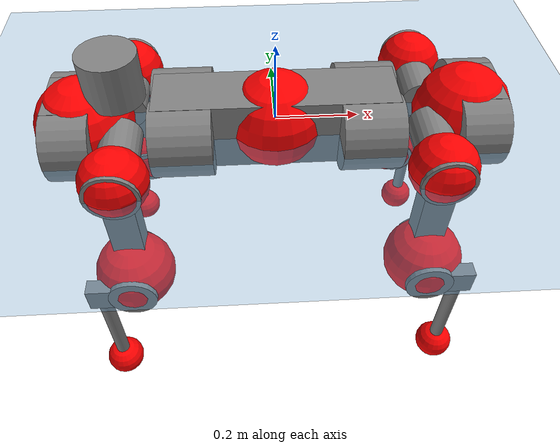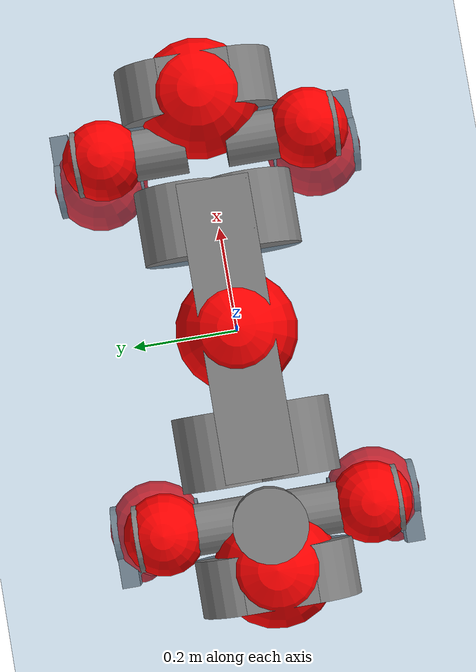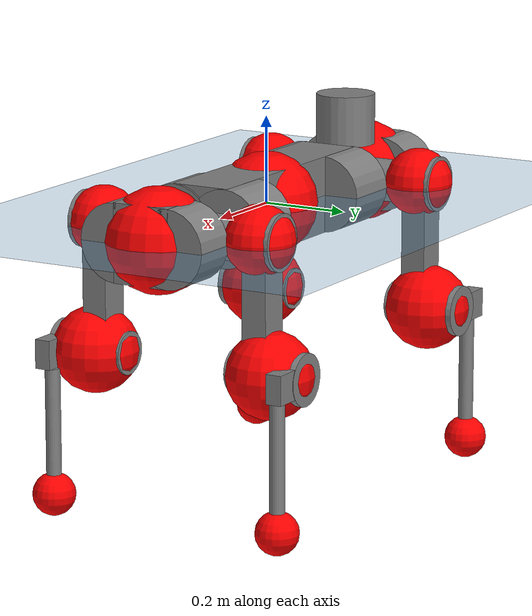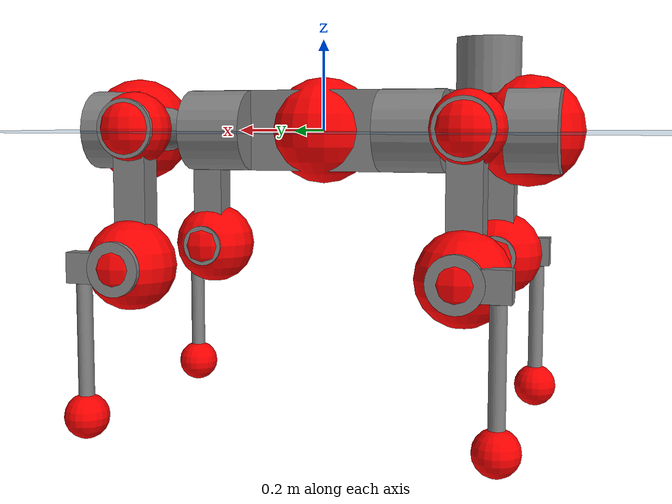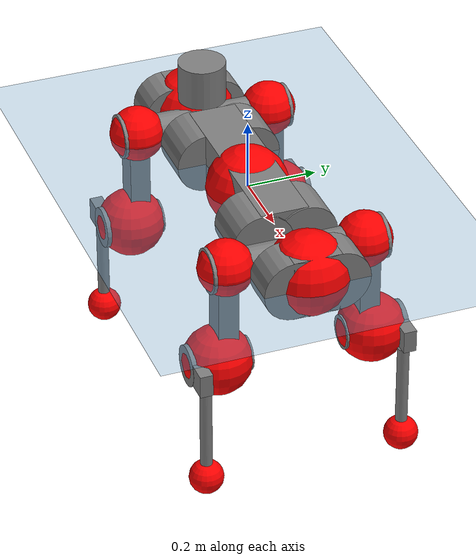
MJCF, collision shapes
<mujoco model="anymal_c">
  <compiler angle="radian" assetdir="assets" balanceinertia="true" inertiafromgeom="false"/>

  <option timestep="0.005" density="1.2" viscosity="2e-05"/>

  <size nkey="1"/>

  <visual>
    <quality shadowsize="8192"/>
    <map shadowclip="0.5"/>
  </visual>

  <default>
    <default class="/">
      <material specular="0" shininess="0.25"/>
      <geom contype="0" conaffinity="0" group="1" solref="-1000 -80"/>
      <site size="0.01 0.005 0.005" group="5"/>
      <general forcelimited="true" forcerange="-80 80" biastype="affine" gainprm="80" biasprm="0 -80 -2"/>
      <default class="anymal_c">
        <joint armature="0.01" damping="0.01" frictionloss="0.1"/>
        <default class="visual">
          <geom type="mesh" group="2"/>
          <default class="visual_zflip"/>
        </default>
        <default class="collision">
          <geom type="cylinder" group="3"/>
          <default class="foot">
            <geom size="0.03 0 0" type="sphere" condim="6" priority="1" friction="0.8 0.02 0.01" solimp="0.015 1 0.03"/>
          </default>
        </default>
      </default>
      <default class="reward_collision_sphere">
        <geom group="5" rgba="1 0 0 1"/>
      </default>
    </default>
  </default>

  <asset>
    <texture type="skybox" colorspace="auto" name="//unnamed_texture_0" builtin="gradient" rgb1="0.95 0.95 0.95" rgb2="0.95 0.95 0.95" width="100" height="600"/>
    <texture type="2d" colorspace="auto" name="texplane" builtin="checker" rgb1="0.345 0.575 0.748" rgb2="0.345 0.575 0.748" markrgb="1 1 1" width="512" height="512"/>
    <texture type="2d" colorspace="linear" name="base" file="base.png"/>
    <texture type="2d" colorspace="linear" name="top_shell" file="top_shell.png"/>
    <texture type="2d" colorspace="linear" name="bottom_shell" file="bottom_shell.png"/>
    <texture type="2d" colorspace="linear" name="remote" file="remote.png"/>
    <texture type="2d" colorspace="linear" name="hatch" file="hatch.png"/>
    <texture type="2d" colorspace="linear" name="handle" file="handle.png"/>
    <texture type="2d" colorspace="linear" name="face" file="face.png"/>
    <texture type="2d" colorspace="linear" name="battery" file="battery.png"/>
    <texture type="2d" colorspace="linear" name="lidar_cage" file="lidar_cage.png"/>
    <texture type="2d" colorspace="linear" name="depth_camera" file="depth_camera.png"/>
    <texture type="2d" colorspace="linear" name="wide_angle_camera" file="wide_angle_camera.png"/>
    <texture type="2d" colorspace="linear" name="lidar" file="lidar.png"/>
    <texture type="2d" colorspace="linear" name="drive" file="drive.png"/>
    <texture type="2d" colorspace="linear" name="hip_l" file="hip_l.png"/>
    <texture type="2d" colorspace="linear" name="shank_l" file="shank_l.png"/>
    <texture type="2d" colorspace="linear" name="foot" file="foot.png"/>
    <texture type="2d" colorspace="linear" name="thigh" file="thigh.png"/>
    <texture type="2d" colorspace="linear" name="shank_r" file="shank_r.png"/>
    <texture type="2d" colorspace="linear" name="hip_r" file="hip_r.png"/>
    <material name="MatPlane" class="/" texture="texplane" texuniform="true" texrepeat="2 2" specular="0.9" shininess="0.5"/>
    <material name="black_plastic" class="/" rgba="0.007 0.007 0.007 1"/>
    <material name="green" class="/" rgba="0.052 0.178 0.033 1"/>
    <material name="red" class="/" rgba="0.178 0.006 0.005 1"/>
    <material name="yellow" class="/" rgba="0.178 0.119 0.006 1"/>
    <material name="lwl" class="/" rgba="0.8 0.8 0.8 1"/>
    <material name="base" class="/" texture="base"/>
    <material name="top_shell" class="/" texture="top_shell"/>
    <material name="bottom_shell" class="/" texture="bottom_shell"/>
    <material name="hip_l" class="/" texture="hip_l"/>
    <material name="thigh" class="/" texture="thigh"/>
    <material name="shank_l" class="/" texture="shank_l"/>
    <material name="foot" class="/" texture="foot"/>
    <material name="hip_r" class="/" texture="hip_r"/>
    <material name="shank" class="/" texture="shank_r"/>
    <material name="hatch" class="/" texture="hatch"/>
    <material name="remote" class="/" texture="remote"/>
    <material name="handle" class="/" texture="handle"/>
    <material name="face" class="/" texture="face"/>
    <material name="depth_camera" class="/" texture="depth_camera"/>
    <material name="wide_angle_camera" class="/" texture="wide_angle_camera"/>
    <material name="battery" class="/" texture="battery"/>
    <material name="lidar_cage" class="/" texture="lidar_cage"/>
    <material name="lidar" class="/" texture="lidar"/>
    <material name="drive" class="/" texture="drive"/>
    <mesh name="base_0" class="/" file="base_0.obj"/>
    <mesh name="base_1" class="/" file="base_1.obj"/>
    <mesh name="base_2" class="/" file="base_2.obj"/>
    <mesh name="base_3" class="/" file="base_3.obj"/>
    <mesh name="base_4" class="/" file="base_4.obj"/>
    <mesh name="base_5" class="/" file="base_5.obj"/>
    <mesh name="top_shell" class="/" file="top_shell.obj"/>
    <mesh name="bottom_shell" class="/" file="bottom_shell.obj"/>
    <mesh name="remote" class="/" file="remote.obj"/>
    <mesh name="handle" class="/" file="handle.obj"/>
    <mesh name="face" class="/" file="face.obj"/>
    <mesh name="wide_angle_camera" class="/" file="wide_angle_camera.obj"/>
    <mesh name="depth_camera" class="/" file="depth_camera.obj"/>
    <mesh name="battery" class="/" file="battery.obj"/>
    <mesh name="lidar_cage" class="/" file="lidar_cage.obj"/>
    <mesh name="lidar" class="/" file="lidar.obj"/>
    <mesh name="drive" class="/" file="drive.obj"/>
    <mesh name="hip_l" class="/" file="hip_l.obj"/>
    <mesh name="thigh" class="/" file="thigh.obj"/>
    <mesh name="shank_l" class="/" file="shank_l.obj"/>
    <mesh name="foot" class="/" file="foot.obj"/>
    <mesh name="hip_r" class="/" file="hip_r.obj"/>
    <mesh name="hatch" class="/" file="hatch.obj"/>
    <mesh name="shank_r" class="/" file="shank_r.obj"/>
  </asset>

  <worldbody>
    <geom name="floor" class="/" size="100 100 0.125" type="plane" group="0" material="MatPlane"/>
    <light name="toplight_shadow" class="/" pos="0 0 5" dir="0.0990148 0.0990148 -0.990148" type="directional" ambient="0.04 0.04 0.04" diffuse="0.55 0.55 0.55" specular="0.12 0.12 0.12"/>
    <light name="toplight_fill" class="/" pos="0 0 5" dir="0.0990148 0.0990148 -0.990148" type="directional" castshadow="false" ambient="0.04 0.04 0.04" diffuse="0.3 0.3 0.3" specular="0.08 0.08 0.08"/>
    <body name="trunk" childclass="anymal_c" pos="-0.000151978 -0.00010665 0.000305366" quat="1 0.000218572 0.000110524 -3.5111e-05">
      <inertial pos="0.00237922 -0.00028341 0.0507928" quat="0.500579 0.502586 0.497527 0.499295" mass="17.8729" diaginertia="0.661583 0.380858 0.251449"/>
      <joint name="//unnamed_joint_0" type="free" armature="0" damping="0" frictionloss="0"/>
      <geom name="//unnamed_geom_1" class="visual" material="green" mesh="base_0"/>
      <geom name="//unnamed_geom_2" class="visual" material="yellow" mesh="base_1"/>
      <geom name="//unnamed_geom_3" class="visual" material="red" mesh="base_2"/>
      <geom name="//unnamed_geom_4" class="visual" material="black_plastic" mesh="base_3"/>
      <geom name="//unnamed_geom_5" class="visual" material="lwl" mesh="base_4"/>
      <geom name="//unnamed_geom_6" class="visual" material="base" mesh="base_5"/>
      <geom name="trunk_1" class="collision" size="0.284972 0.0687864 0.0884396" type="box"/>
      <geom name="trunk_2" class="collision" size="0.0884396 0.071243" pos="0.219478 0.0636371 0" quat="0.707107 0 0.707107 0"/>
      <geom name="trunk_3" class="collision" size="0.0884396 0.071243" pos="-0.219478 0.0636371 0" quat="0.707107 0 0.707107 0"/>
      <geom name="trunk_4" class="collision" size="0.0884396 0.071243" pos="0.219478 -0.0636371 0" quat="0.707107 0 0.707107 0"/>
      <geom name="trunk_5" class="collision" size="0.0884396 0.071243" pos="-0.219478 -0.0636371 0" quat="0.707107 0 0.707107 0"/>
      <geom name="//unnamed_geom_12" class="visual" material="top_shell" mesh="top_shell"/>
      <geom name="//unnamed_geom_13" class="visual" material="bottom_shell" mesh="bottom_shell"/>
      <geom name="//unnamed_geom_14" class="visual" material="remote" mesh="remote"/>
      <geom name="//unnamed_geom_15" class="visual" material="handle" mesh="handle"/>
      <geom name="//unnamed_geom_16" class="visual" pos="0.41827 0 0" quat="1 0 0 0" material="face" mesh="face"/>
      <geom name="trunk_6" class="collision" size="0.0540464 0.0687864 0.0884396" pos="0.47377 0 0" type="box"/>
      <geom name="//unnamed_geom_18" class="collision" size="0.0884396 0.0540464" pos="0.47377 0.0636371 0" quat="0.707107 0 0.707107 0"/>
      <geom name="//unnamed_geom_19" class="collision" size="0.0884396 0.0540464" pos="0.47377 -0.0636371 0" quat="0.707107 0 0.707107 0"/>
      <geom name="//unnamed_geom_20" class="visual" pos="0.465849 0 -0.0302272" quat="0.965926 0 0.258819 0" material="depth_camera" mesh="depth_camera"/>
      <geom name="//unnamed_geom_21" class="visual" pos="0.517666 0 0.015416" material="wide_angle_camera" mesh="wide_angle_camera"/>
      <geom name="//unnamed_geom_22" class="visual_zflip" pos="-0.41827 0 0" quat="0 0 0 1" material="face" mesh="face"/>
      <geom name="trunk_7" class="collision" size="0.0540464 0.0687864 0.0884396" pos="-0.47377 0 0" quat="0 0 0 1" type="box"/>
      <geom name="//unnamed_geom_24" class="collision" size="0.0884396 0.0540464" pos="-0.47377 -0.0636371 0" quat="0 -0.707107 0 0.707107"/>
      <geom name="//unnamed_geom_25" class="collision" size="0.0884396 0.0540464" pos="-0.47377 0.0636371 0" quat="0 -0.707107 0 0.707107"/>
      <geom name="//unnamed_geom_26" class="visual" pos="-0.465849 0 -0.0302272" quat="0 -0.258819 0 0.965926" material="depth_camera" mesh="depth_camera"/>
      <geom name="//unnamed_geom_27" class="visual_zflip" pos="-0.517666 0 0.015416" quat="0 0 0 1" material="wide_angle_camera" mesh="wide_angle_camera"/>
      <geom name="//unnamed_geom_28" class="visual" material="battery" mesh="battery"/>
      <geom name="//unnamed_geom_29" class="visual" pos="0 0.0681986 0.0297581" quat="0.683013 -0.183013 0.183013 0.683013" material="depth_camera" mesh="depth_camera"/>
      <geom name="//unnamed_geom_30" class="visual" pos="0 -0.0681986 0.0297581" quat="0.683013 0.183013 0.183013 -0.683013" material="depth_camera" mesh="depth_camera"/>
      <geom name="//unnamed_geom_31" class="visual" pos="-0.36731 0 0.0756897" quat="1 0 0 0" material="lidar_cage" mesh="lidar_cage"/>
      <geom name="trunk_8" class="collision" size="0.0687864 0.0589597" pos="-0.36731 0 0.137477"/>
      <geom name="//unnamed_geom_33" class="visual" pos="-0.36731 -3.92848e-05 0.146436" quat="0.707107 0 0 -0.707107" material="lidar" mesh="lidar"/>
      <geom name="//unnamed_geom_34" class="visual" pos="0.302627 0.0945894 -2.08193e-09" quat="0.258819 0.965926 0 0" material="drive" mesh="drive"/>
      <geom name="//unnamed_geom_35" class="visual" pos="0.302627 -0.0945894 2.08193e-09" quat="0.258819 -0.965926 0 0" material="drive" mesh="drive"/>
      <geom name="//unnamed_geom_36" class="visual" pos="-0.302627 0.0945894 2.08193e-09" quat="0 0 0.965926 -0.258819" material="drive" mesh="drive"/>
      <geom name="//unnamed_geom_37" class="visual" pos="-0.302627 -0.0945894 -2.08193e-09" quat="0 0 -0.965926 -0.258819" material="drive" mesh="drive"/>
      <geom name="//unnamed_geom_38" class="visual" pos="0.117055 0 0.0751748" quat="1 0 0 0" material="hatch" mesh="hatch"/>
      <geom name="//unnamed_geom_39" class="reward_collision_sphere" size="0.117919"/>
      <geom name="//unnamed_geom_40" class="reward_collision_sphere" size="0.117919" pos="0.454093 0 0"/>
      <geom name="//unnamed_geom_41" class="reward_collision_sphere" size="0.117919" pos="-0.454093 0 0"/>
      <site name="imu" pos="0.253287 0.00738832 0.0456275" size="0.00982662"/>
      <camera name="track" pos="0 -1.8182 0" quat="0.707107 0.707107 0 0" mode="trackcom"/>
      <camera name="ego_camera" pos="0.454093 0 -0.0411917" quat="-0.5 -0.5 0.5 0.5"/>
      <body name="LF_HIP" pos="0.303313 0.0947979 0.00120579" quat="0.258685 0.965962 -0.000102958 4.56746e-05">
        <inertial pos="0.0570759 -0.0135515 -0.00848345" quat="-0.1275 0.70949 -0.135544 0.679703" mass="2.62327" diaginertia="0.00609458 0.00308664 0.00381567"/>
        <joint name="LF_HAA" pos="0 0 0" axis="0.999973 0.00418972 0.00609764" range="-0.713646 0.490646" armature="0.00967662" damping="0.0121621" frictionloss="0.0953899"/>
        <geom name="//unnamed_geom_42" class="visual" pos="0 -0.00012247 2.01156e-05" quat="0.258819 -0.965926 0 0" material="hip_l" mesh="hip_l"/>
        <geom name="//unnamed_geom_43" class="visual" pos="0.0604448 -0.071968 -0.0424434" quat="0.183013 -0.683013 0.683013 0.183013" material="drive" mesh="drive"/>
        <geom name="//unnamed_geom_44" class="collision" size="0.0491331 0.0687864" pos="0.0604448 -0.0108727 -0.00711071" quat="-0.353553 -0.612372 0.612372 -0.353553"/>
        <body name="LF_THIGH" pos="0.0616422 -0.0666667 -0.0428369" quat="0.182935 -0.682914 0.683106 0.183109">
          <inertial pos="0.0313597 7.29365e-05 -0.253557" quat="0.993408 -0.00372305 -0.079514 0.082484" mass="2.90228" diaginertia="0.0316379 0.0185144 0.00482861"/>
          <joint name="LF_HFE" pos="0 0 0" axis="0.99999 -0.00325078 -0.00315479" range="-3.14478 3.13848" armature="0.0095627" damping="0.0133559" frictionloss="0.10239"/>
          <geom name="//unnamed_geom_45" class="visual" pos="0.00198948 3.13495e-06 0" quat="0.707107 0 0 -0.707107" material="thigh" mesh="thigh"/>
          <geom name="//unnamed_geom_46" class="collision" size="0.0638731 0.0393065" pos="0.0403638 0 0" quat="0.5 0.5 -0.5 -0.5"/>
          <geom name="//unnamed_geom_47" class="collision" size="0.0368498 0.0294799 0.138864" pos="0.0302728 0 -0.145524" quat="0.707107 0 0 -0.707107" type="box"/>
          <geom name="//unnamed_geom_48" class="visual" pos="0.101212 0 -0.293491" quat="1 0 0 0" material="drive" mesh="drive"/>
          <geom name="//unnamed_geom_49" class="collision" size="0.0491331 0.0687864" pos="0.0305756 0 -0.293491" quat="0.707107 0 0.707107 0"/>
          <geom name="//unnamed_geom_50" class="reward_collision_sphere" size="0.078613" pos="0.0252274 0 0"/>
          <body name="LF_SHANK" pos="0.10129 -0.00107247 -0.294139" quat="1 -4.86678e-05 -0.000370393 -0.000250197">
            <inertial pos="0.00493048 -0.0561464 -0.0831582" quat="0.993006 -0.115394 -0.000561099 -0.0249797" mass="0.546155" diaginertia="0.0106162 0.00566313 0.00128905"/>
            <joint name="LF_KFE" pos="0 0 0" axis="0.999999 0.000787992 -0.000716735" range="-3.14002 3.13434" armature="0.00980642" damping="0.0119905" frictionloss="0.0969647"/>
            <geom name="//unnamed_geom_51" class="visual" pos="0.000648726 0.00345904 0" quat="0.707107 0 0 -0.707107" material="shank_l" mesh="shank_l"/>
            <geom name="LF_kfe_act" class="collision" size="0.0589597 0.0196532" pos="0.0201819 0 0" quat="0.5 0.5 -0.5 -0.5"/>
            <geom name="//unnamed_geom_53" class="collision" size="0.0565021 0.0331649 0.0186706" pos="0.0201819 -0.0522724 0" quat="0.5 0.5 -0.5 -0.5" type="box"/>
            <geom name="//unnamed_geom_54" class="visual" pos="0.0131685 -0.0788407 -0.348039" quat="0.382683 0 0 -0.92388" material="foot" mesh="foot"/>
            <geom name="LF_calf" class="collision" size="0.0171966 0.138803" pos="0.0131687 -0.0799554 -0.174019" quat="0.707107 0 0 -0.707107"/>
            <geom name="LF_foot" class="foot" size="0.0294988" pos="0.0131687 -0.0799554 -0.324868" quat="0.707107 0 0 -0.707107"/>
            <geom name="//unnamed_geom_57" class="reward_collision_sphere" size="0.0982662" pos="-0.0504547 0 0"/>
            <geom name="//unnamed_geom_58" class="reward_collision_sphere" size="0.0491331" pos="0.0131687 -0.0799554 -0.324868"/>
            <site name="LF_foot" class="foot" pos="0.0131687 -0.0799554 -0.324868" quat="0.707107 0 0 -0.707107" size="0.00982662"/>
          </body>
        </body>
      </body>
      <body name="RF_HIP" pos="0.302739 -0.0944455 0.000662247" quat="0.258681 -0.965963 -0.000239336 -4.47687e-05">
        <inertial pos="0.0578296 0.0145608 -0.00870082" quat="0.135951 0.676089 0.130197 0.712369" mass="2.65119" diaginertia="0.00617223 0.00310098 0.00382224"/>
        <joint name="RF_HAA" pos="0 0 0" axis="1 -0.000840527 -0.00050211" range="-0.496407 0.721056" armature="0.0098211" damping="0.00962913" frictionloss="0.100539"/>
        <geom name="//unnamed_geom_59" class="visual" pos="0 0.000122469 2.01156e-05" quat="0.258819 0.965926 0 0" material="hip_r" mesh="hip_r"/>
        <geom name="//unnamed_geom_60" class="visual" pos="0.0604448 0.071968 -0.0424434" quat="0.183013 0.683013 0.683013 -0.183013" material="drive" mesh="drive"/>
        <geom name="//unnamed_geom_61" class="collision" size="0.0491331 0.0687864" pos="0.0604448 0.0108727 -0.00711071" quat="-0.353553 0.612372 0.612372 0.353553"/>
        <body name="RF_THIGH" pos="0.0607032 0.0664447 -0.0441525" quat="0.182985 0.682806 0.683229 -0.183003">
          <inertial pos="0.0318267 0.000850825 -0.252353" quat="0.992776 -0.00498348 -0.081022 0.0883513" mass="2.92317" diaginertia="0.0315409 0.0186636 0.00485984"/>
          <joint name="RF_HFE" pos="0 0 0" axis="0.999999 -0.000586239 0.00130203" stiffness="0.00720319" range="-3.14115 3.12578" armature="0.00960993" damping="0.0108188" frictionloss="0.100195"/>
          <geom name="//unnamed_geom_62" class="visual" pos="0.00198948 3.13495e-06 0" quat="0.707107 0 0 -0.707107" material="thigh" mesh="thigh"/>
          <geom name="//unnamed_geom_63" class="collision" size="0.0638731 0.0393065" pos="0.0403638 0 0" quat="0.5 0.5 0.5 0.5"/>
          <geom name="//unnamed_geom_64" class="collision" size="0.0368498 0.0294799 0.138864" pos="0.0302728 0 -0.145524" quat="0.707107 0 0 0.707107" type="box"/>
          <geom name="//unnamed_geom_65" class="visual" pos="0.101212 0 -0.293491" quat="1 0 0 0" material="drive" mesh="drive"/>
          <geom name="//unnamed_geom_66" class="collision" size="0.0491331 0.0687864" pos="0.0305756 0 -0.293491" quat="0.707107 0 0.707107 0"/>
          <geom name="//unnamed_geom_67" class="reward_collision_sphere" size="0.078613" pos="0.0252274 0 0"/>
          <body name="RF_SHANK" pos="0.10077 0.000451064 -0.294073" quat="1 0.000293022 -5.57735e-05 9.86683e-05">
            <inertial pos="0.0067606 0.05663 -0.083284" quat="0.992916 0.116274 0.000285388 0.0244719" mass="0.560376" diaginertia="0.0105247 0.00570021 0.00130257"/>
            <joint name="RF_KFE" pos="0 0 0" axis="0.999999 -0.000229691 0.00130111" range="-3.13669 3.14288" armature="0.00988613" damping="0.00877139" frictionloss="0.0971174"/>
            <geom name="//unnamed_geom_68" class="visual" pos="0.000648722 -0.00345903 0" quat="0.707107 0 0 0.707107" material="shank" mesh="shank_r"/>
            <geom name="RF_kfe_act" class="collision" size="0.0589597 0.0196532" pos="0.0201819 0 0" quat="0.5 0.5 0.5 0.5"/>
            <geom name="//unnamed_geom_70" class="collision" size="0.0565021 0.0331649 0.0186706" pos="0.0201819 0.0522724 0" quat="0.5 0.5 0.5 0.5" type="box"/>
            <geom name="//unnamed_geom_71" class="visual" pos="0.0131688 0.0788407 -0.348039" quat="0.382683 0 0 0.92388" material="foot" mesh="foot"/>
            <geom name="RF_calf" class="collision" size="0.0171966 0.138803" pos="0.0131687 0.0799554 -0.174019" quat="0.707107 0 0 0.707107"/>
            <geom name="RF_foot" class="foot" size="0.0298911" pos="0.0131687 0.0799554 -0.324868" quat="0.707107 0 0 0.707107"/>
            <geom name="//unnamed_geom_74" class="reward_collision_sphere" size="0.0982662" pos="-0.0504547 0 0"/>
            <geom name="//unnamed_geom_75" class="reward_collision_sphere" size="0.0491331" pos="0.0131687 0.0799554 -0.324868"/>
            <site name="RF_foot" class="foot" pos="0.0131687 0.0799554 -0.324868" quat="0.707107 0 0 0.707107" size="0.00982662"/>
          </body>
        </body>
      </body>
      <body name="LH_HIP" pos="-0.300937 0.0952286 0.00062546" quat="-4.92838e-05 -0.000159231 0.965933 -0.258793">
        <inertial pos="0.0576027 0.0127572 -0.00874684" quat="0.135596 0.680073 0.127588 0.709109" mass="2.66206" diaginertia="0.00610555 0.00306463 0.00383502"/>
        <joint name="LH_HAA" pos="0 0 0" axis="0.999998 0.00179228 -0.00020119" range="-0.511476 0.718582" armature="0.00982914" damping="0.0090806" frictionloss="0.0976119"/>
        <geom name="//unnamed_geom_76" class="visual" pos="0 0.000122469 2.01156e-05" quat="-0.258819 -0.965926 0 0" material="hip_r" mesh="hip_r"/>
        <geom name="//unnamed_geom_77" class="visual" pos="0.0604448 0.071968 -0.0424434" quat="0.183013 0.683013 0.683013 -0.183013" material="drive" mesh="drive"/>
        <geom name="//unnamed_geom_78" class="collision" size="0.0491331 0.0687864" pos="0.0604448 0.0108727 -0.00711071" quat="-0.353553 0.612372 0.612372 0.353553"/>
        <body name="LH_THIGH" pos="0.0593033 0.0655726 -0.0440293" quat="0.183025 0.68298 0.683038 -0.183027">
          <inertial pos="0.0316196 0.00027051 -0.253131" quat="0.992361 -0.00618458 -0.083212 0.0908722" mass="2.89958" diaginertia="0.031665 0.0183055 0.00475099"/>
          <joint name="LH_HFE" pos="0 0 0" axis="0.999998 -9.08955e-05 -0.00198188" range="-3.15935 3.12191" armature="0.00985044" damping="0.00913426" frictionloss="0.0961532"/>
          <geom name="//unnamed_geom_79" class="visual" pos="0.00198948 3.13495e-06 0" quat="0.707107 0 0 -0.707107" material="thigh" mesh="thigh"/>
          <geom name="//unnamed_geom_80" class="collision" size="0.0638731 0.0393065" pos="0.0403638 0 0" quat="0.5 0.5 -0.5 -0.5"/>
          <geom name="//unnamed_geom_81" class="collision" size="0.0368498 0.0294799 0.138864" pos="0.0302728 0 -0.145524" quat="0.707107 0 0 -0.707107" type="box"/>
          <geom name="//unnamed_geom_82" class="visual" pos="0.101212 0 -0.293491" quat="1 0 0 0" material="drive" mesh="drive"/>
          <geom name="//unnamed_geom_83" class="collision" size="0.0491331 0.0687864" pos="0.0305756 0 -0.293491" quat="0.707107 0 0.707107 0"/>
          <geom name="//unnamed_geom_84" class="reward_collision_sphere" size="0.078613" pos="0.0252274 0 0"/>
          <body name="LH_SHANK" pos="0.102007 -0.00129609 -0.294381" quat="1 7.95589e-05 0.000500236 -4.59046e-05">
            <inertial pos="0.00529265 0.0555723 -0.0820347" quat="0.992534 0.118698 -0.00128181 0.0280114" mass="0.55777" diaginertia="0.0106034 0.00576204 0.00129714"/>
            <joint name="LH_KFE" pos="0 0 0" axis="0.999992 0.000968808 0.00391404" range="-3.13534 3.15844" armature="0.0100798" damping="0.00971062" frictionloss="0.101615"/>
            <geom name="//unnamed_geom_85" class="visual" pos="0.000648722 -0.00345903 0" quat="-0.707107 0 0 -0.707107" material="shank" mesh="shank_r"/>
            <geom name="LH_kfe_act" class="collision" size="0.0589597 0.0196532" pos="0.0201819 0 0" quat="0.5 0.5 -0.5 -0.5"/>
            <geom name="//unnamed_geom_87" class="collision" size="0.0565021 0.0331649 0.0186706" pos="0.0201819 0.0522724 0" quat="0.5 0.5 -0.5 -0.5" type="box"/>
            <geom name="//unnamed_geom_88" class="visual" pos="0.0131688 0.0788407 -0.348039" quat="-0.382683 0 0 -0.92388" material="foot" mesh="foot"/>
            <geom name="LH_calf" class="collision" size="0.0171966 0.138803" pos="0.0131687 0.0799554 -0.174019" quat="0.707107 0 0 -0.707107"/>
            <geom name="LH_foot" class="foot" size="0.0316415" pos="0.0131687 0.0799554 -0.324868" quat="0.707107 0 0 -0.707107"/>
            <geom name="//unnamed_geom_91" class="reward_collision_sphere" size="0.0982662" pos="-0.0504547 0 0"/>
            <geom name="//unnamed_geom_92" class="reward_collision_sphere" size="0.0491331" pos="0.0131687 0.0799554 -0.324868"/>
            <site name="LH_foot" class="foot" pos="0.0131687 0.0799554 -0.324868" quat="0.707107 0 0 -0.707107" size="0.00982662"/>
          </body>
        </body>
      </body>
      <body name="RH_HIP" pos="-0.302985 -0.0945237 -0.000139522" quat="-2.64762e-05 -0.000104045 -0.965949 -0.258732">
        <inertial pos="0.0563672 -0.0146841 -0.00878219" quat="-0.127847 0.71097 -0.134866 0.678224" mass="2.62803" diaginertia="0.00603741 0.00300648 0.00375172"/>
        <joint name="RH_HAA" pos="0 0 0" axis="0.999992 -0.00395583 -0.00103166" range="-0.721134 0.494922" armature="0.00972566" damping="0.0079658" frictionloss="0.0992651"/>
        <geom name="//unnamed_geom_93" class="visual" pos="0 -0.00012247 2.01156e-05" quat="-0.258819 0.965926 0 0" material="hip_l" mesh="hip_l"/>
        <geom name="//unnamed_geom_94" class="visual" pos="0.0604448 -0.071968 -0.0424434" quat="-0.183013 0.683013 -0.683013 -0.183013" material="drive" mesh="drive"/>
        <geom name="//unnamed_geom_95" class="collision" size="0.0491331 0.0687864" pos="0.0604448 -0.0108727 -0.00711071" quat="0.353553 0.612372 -0.612372 0.353553"/>
        <body name="RH_THIGH" pos="0.0605705 -0.0659141 -0.0434297" quat="-0.183019 0.682975 -0.68308 -0.182896">
          <inertial pos="0.0317596 0.000289691 -0.252578" quat="0.993446 -0.00444387 -0.0810978 0.0804309" mass="2.90003" diaginertia="0.0317294 0.0184748 0.00490334"/>
          <joint name="RH_HFE" pos="0 0 0" axis="0.999996 -0.000683983 0.00261259" range="-3.13655 3.14098" armature="0.00962497" damping="0.00729421" frictionloss="0.101376"/>
          <geom name="//unnamed_geom_96" class="visual" pos="0.00198948 3.13495e-06 0" quat="0.707107 0 0 -0.707107" material="thigh" mesh="thigh"/>
          <geom name="//unnamed_geom_97" class="collision" size="0.0638731 0.0393065" pos="0.0403638 0 0" quat="0.5 0.5 0.5 0.5"/>
          <geom name="//unnamed_geom_98" class="collision" size="0.0368498 0.0294799 0.138864" pos="0.0302728 0 -0.145524" quat="0.707107 0 0 0.707107" type="box"/>
          <geom name="//unnamed_geom_99" class="visual" pos="0.101212 0 -0.293491" quat="1 0 0 0" material="drive" mesh="drive"/>
          <geom name="//unnamed_geom_100" class="collision" size="0.0491331 0.0687864" pos="0.0305756 0 -0.293491" quat="0.707107 0 0.707107 0"/>
          <geom name="//unnamed_geom_101" class="reward_collision_sphere" size="0.078613" pos="0.0252274 0 0"/>
          <body name="RH_SHANK" pos="0.100581 0.000421764 -0.293686" quat="1 -0.000186831 8.31464e-05 0.000138102">
            <inertial pos="0.00583527 -0.0560895 -0.0828901" quat="0.993084 -0.114734 -0.00105309 -0.0248756" mass="0.557032" diaginertia="0.0107867 0.00573049 0.00130125"/>
            <joint name="RH_KFE" pos="0 0 0" axis="0.999995 -0.00292398 0.00120112" range="-3.13685 3.13944" armature="0.00980842" damping="0.0112126" frictionloss="0.0999384"/>
            <geom name="//unnamed_geom_102" class="visual" pos="0.000648726 0.00345904 0" quat="0.707107 0 0 -0.707107" material="shank_l" mesh="shank_l"/>
            <geom name="RH_kfe_act" class="collision" size="0.0589597 0.0196532" pos="0.0201819 0 0" quat="0.5 0.5 0.5 0.5"/>
            <geom name="//unnamed_geom_104" class="collision" size="0.0565021 0.0331649 0.0186706" pos="0.0201819 -0.0522724 0" quat="0.5 0.5 0.5 0.5" type="box"/>
            <geom name="//unnamed_geom_105" class="visual" pos="0.0131685 -0.0788407 -0.348039" quat="0.382683 0 0 -0.92388" material="foot" mesh="foot"/>
            <geom name="RH_calf" class="collision" size="0.0171966 0.138803" pos="0.0131687 -0.0799554 -0.174019" quat="0.707107 0 0 0.707107"/>
            <geom name="RH_foot" class="foot" size="0.0273668" pos="0.0131687 -0.0799554 -0.324868" quat="0.707107 0 0 0.707107"/>
            <geom name="//unnamed_geom_108" class="reward_collision_sphere" size="0.0982662" pos="-0.0504547 0 0"/>
            <geom name="//unnamed_geom_109" class="reward_collision_sphere" size="0.0491331" pos="0.0131687 -0.0799554 -0.324868"/>
            <site name="RH_foot" class="foot" pos="0.0131687 -0.0799554 -0.324868" quat="0.707107 0 0 0.707107" size="0.00982662"/>
          </body>
        </body>
      </body>
    </body>
  </worldbody>

  <contact>
    <pair class="/" geom1="floor" geom2="LF_foot" name="//unnamed_contact_0"/>
    <pair class="/" geom1="floor" geom2="RF_foot" name="//unnamed_contact_1"/>
    <pair class="/" geom1="floor" geom2="LH_foot" name="//unnamed_contact_2"/>
    <pair class="/" geom1="floor" geom2="RH_foot" name="//unnamed_contact_3"/>
  </contact>

  <actuator>
    <general name="LF_HAA" class="/" joint="LF_HAA" forcerange="-79.352 79.352" gainprm="79.0971" biasprm="0 -79.0971 -1.89061"/>
    <general name="LF_HFE" class="/" joint="LF_HFE" forcerange="-80.1382 80.1382" gainprm="79.0971" biasprm="0 -79.0971 -1.89061"/>
    <general name="LF_KFE" class="/" joint="LF_KFE" forcerange="-77.4427 77.4427" gainprm="79.0971" biasprm="0 -79.0971 -1.89061"/>
    <general name="RF_HAA" class="/" joint="RF_HAA" forcerange="-78.7978 78.7978" gainprm="79.0971" biasprm="0 -79.0971 -1.89061"/>
    <general name="RF_HFE" class="/" joint="RF_HFE" forcerange="-81.0844 81.0844" gainprm="79.0971" biasprm="0 -79.0971 -1.89061"/>
    <general name="RF_KFE" class="/" joint="RF_KFE" forcerange="-76.1448 76.1448" gainprm="79.0971" biasprm="0 -79.0971 -1.89061"/>
    <general name="LH_HAA" class="/" joint="LH_HAA" forcerange="-79.3291 79.3291" gainprm="79.0971" biasprm="0 -79.0971 -1.89061"/>
    <general name="LH_HFE" class="/" joint="LH_HFE" forcerange="-76.3338 76.3338" gainprm="79.0971" biasprm="0 -79.0971 -1.89061"/>
    <general name="LH_KFE" class="/" joint="LH_KFE" forcerange="-81.2431 81.2431" gainprm="79.0971" biasprm="0 -79.0971 -1.89061"/>
    <general name="RH_HAA" class="/" joint="RH_HAA" forcerange="-78.9499 78.9499" gainprm="79.0971" biasprm="0 -79.0971 -1.89061"/>
    <general name="RH_HFE" class="/" joint="RH_HFE" forcerange="-79.252 79.252" gainprm="79.0971" biasprm="0 -79.0971 -1.89061"/>
    <general name="RH_KFE" class="/" joint="RH_KFE" forcerange="-76.8236 76.8236" gainprm="79.0971" biasprm="0 -79.0971 -1.89061"/>
  </actuator>

  <sensor>
    <gyro site="imu" name="imu_angular_velocity"/>
    <velocimeter site="imu" name="imu_linear_velocity"/>
    <framelinvel objtype="site" objname="LF_foot" name="LF_foot_global_linear_velocity"/>
    <framelinvel objtype="site" objname="RF_foot" name="RF_foot_global_linear_velocity"/>
    <framelinvel objtype="site" objname="LH_foot" name="LH_foot_global_linear_velocity"/>
    <framelinvel objtype="site" objname="RH_foot" name="RH_foot_global_linear_velocity"/>
  </sensor>

  <keyframe>
    <key name="home" qpos="0 0 0.55 1 0 0 0 0 0.4 -0.8 0 -0.4 0.8 0 -0.4 0.8 0 0.4 -0.8"/>
  </keyframe>
</mujoco>
